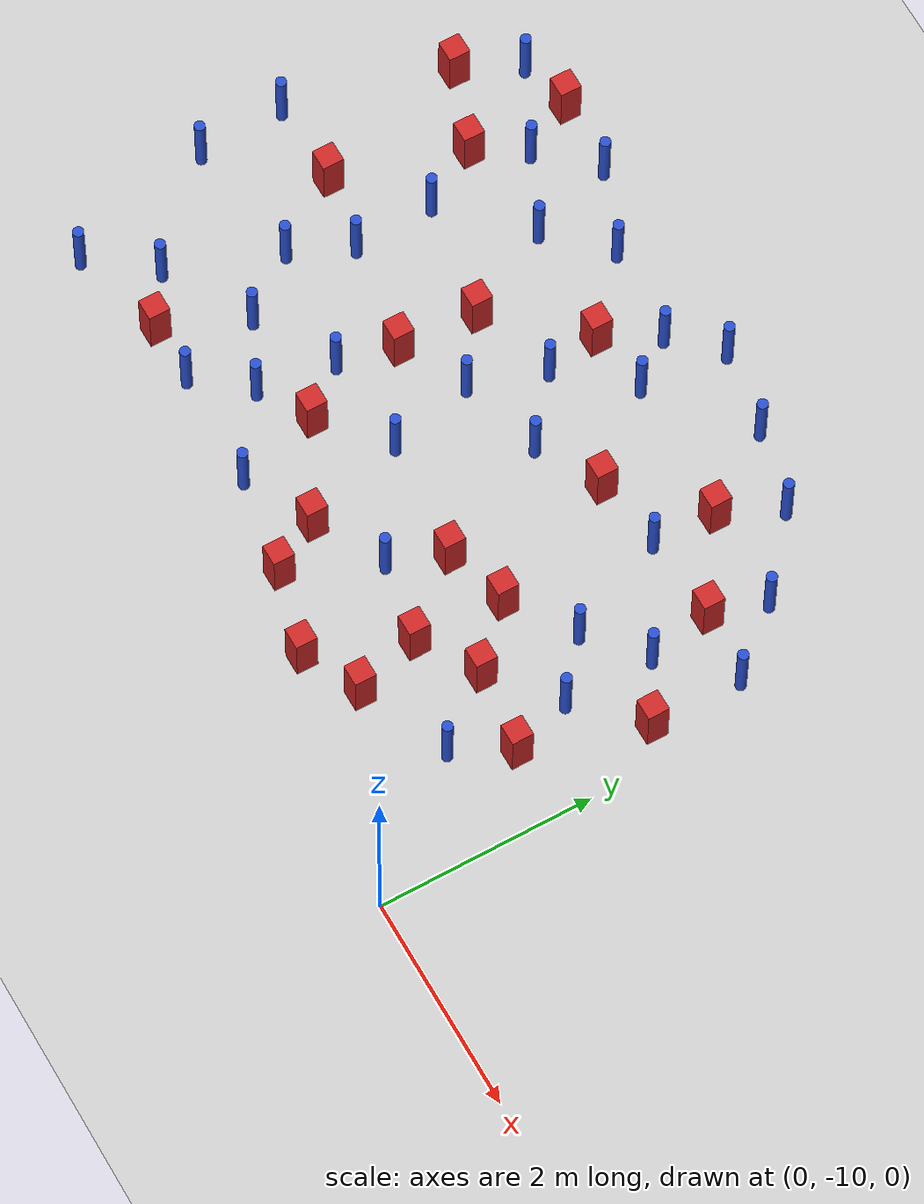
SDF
<sdf version="1.6">
 <world name="default">
  <model name="ground_plane">
   <static>1</static>
   <link name="link">
    <collision name="collision">
     <geometry><plane><normal>0 0 1</normal><size>100 100</size></plane></geometry>
     <surface><friction><ode><mu>100</mu><mu2>50</mu2></ode></friction></surface>
    </collision>
    <visual name="visual">
     <cast_shadows>0</cast_shadows>
     <geometry><plane><normal>0 0 1</normal><size>100 100</size></plane></geometry>
     <material>
      <ambient>1.0 1.0 1.0 1.0</ambient>
      <diffuse>0.8 0.8 0.8 1.0</diffuse>
      <specular>0.01 0.01 0.01 1.000000</specular>
     </material>
    </visual>
   </link>
  </model>
  <model name="pole_obstacle0">
   <static>true</static>
   <pose>-5.52898609765 -5.44128097975 2.88873142074e-08 -9.90536690842e-09 4.60219948965e-07 -1.20965994976e-07</pose>
   <link name="link">
    <pose>0 0 0.3 0 -0 0</pose>
    <inertial>
     <mass>1</mass>
     <inertia><ixx>0.145833</ixx><ixy>0</ixy><ixz>0</ixz><iyy>0.145833</iyy><iyz>0</iyz><izz>0.125</izz></inertia>
    </inertial>
    <collision name="collision">
     <geometry><cylinder><radius>0.05</radius><length>.6</length></cylinder></geometry>
    </collision>
    <visual name="visual">
     <geometry><cylinder><radius>0.05</radius><length>.6</length></cylinder></geometry>
     <material>
      <script><name>Gazebo/Blue</name><uri>file://media/materials/scripts/gazebo.material</uri></script>
     </material>
    </visual>
   </link>
  </model>
  <model name="pole_obstacle4">
   <static>true</static>
   <pose>-5.45148548055 -7.20574879343 2.88873142074e-08 -9.90536690842e-09 4.60219948965e-07 -1.20965994976e-07</pose>
   <link name="link">
    <pose>0 0 0.3 0 -0 0</pose>
    <inertial>
     <mass>1</mass>
     <inertia><ixx>0.145833</ixx><ixy>0</ixy><ixz>0</ixz><iyy>0.145833</iyy><iyz>0</iyz><izz>0.125</izz></inertia>
    </inertial>
    <collision name="collision">
     <geometry><cylinder><radius>0.05</radius><length>.6</length></cylinder></geometry>
    </collision>
    <visual name="visual">
     <geometry><cylinder><radius>0.05</radius><length>.6</length></cylinder></geometry>
     <material>
      <script><name>Gazebo/Blue</name><uri>file://media/materials/scripts/gazebo.material</uri></script>
     </material>
    </visual>
   </link>
  </model>
  <model name="pole_obstacle5">
   <static>true</static>
   <pose>-3.96869382587 -9.11810775149 2.88873142074e-08 -9.90536690427e-09 4.60219948975e-07 -1.2096599497e-07</pose>
   <link name="link">
    <pose>0 0 0.3 0 -0 0</pose>
    <inertial>
     <mass>1</mass>
     <inertia><ixx>0.145833</ixx><ixy>0</ixy><ixz>0</ixz><iyy>0.145833</iyy><iyz>0</iyz><izz>0.125</izz></inertia>
    </inertial>
    <collision name="collision">
     <geometry><cylinder><radius>0.05</radius><length>.6</length></cylinder></geometry>
    </collision>
    <visual name="visual">
     <geometry><cylinder><radius>0.05</radius><length>.6</length></cylinder></geometry>
     <material>
      <script><name>Gazebo/Blue</name><uri>file://media/materials/scripts/gazebo.material</uri></script>
     </material>
    </visual>
   </link>
  </model>
  <model name="pole_obstacle6">
   <static>true</static>
   <pose>-6.06268718287 -8.77293479968 2.88873142074e-08 -9.9053668967e-09 4.60219948993e-07 -1.20965994957e-07</pose>
   <link name="link">
    <pose>0 0 0.3 0 -0 0</pose>
    <inertial>
     <mass>1</mass>
     <inertia><ixx>0.145833</ixx><ixy>0</ixy><ixz>0</ixz><iyy>0.145833</iyy><iyz>0</iyz><izz>0.125</izz></inertia>
    </inertial>
    <collision name="collision">
     <geometry><cylinder><radius>0.05</radius><length>.6</length></cylinder></geometry>
    </collision>
    <visual name="visual">
     <geometry><cylinder><radius>0.05</radius><length>.6</length></cylinder></geometry>
     <material>
      <script><name>Gazebo/Blue</name><uri>file://media/materials/scripts/gazebo.material</uri></script>
     </material>
    </visual>
   </link>
  </model>
  <model name="pole_obstacle7">
   <static>true</static>
   <pose>-0.292384732256 -6.39790182835 2.88873142074e-08 -9.90536689618e-09 4.60219948994e-07 -1.20965994956e-07</pose>
   <link name="link">
    <pose>0 0 0.3 0 -0 0</pose>
    <inertial>
     <mass>1</mass>
     <inertia><ixx>0.145833</ixx><ixy>0</ixy><ixz>0</ixz><iyy>0.145833</iyy><iyz>0</iyz><izz>0.125</izz></inertia>
    </inertial>
    <collision name="collision">
     <geometry><cylinder><radius>0.05</radius><length>.6</length></cylinder></geometry>
    </collision>
    <visual name="visual">
     <geometry><cylinder><radius>0.05</radius><length>.6</length></cylinder></geometry>
     <material>
      <script><name>Gazebo/Blue</name><uri>file://media/materials/scripts/gazebo.material</uri></script>
     </material>
    </visual>
   </link>
  </model>
  <model name="square_post_obstacle11">
   <static>true</static>
   <pose>-3.3232403131 -8.80907015829 8.22691968438e-08 7.22125133819e-06 -7.54495500217e-07 2.29674213826e-05</pose>
   <link name="link">
    <pose>0 0 0.25 0 -0 0</pose>
    <inertial>
     <mass>100</mass>
     <inertia>
      <ixx>0.166667</ixx>
      <ixy>0</ixy>
      <ixz>0</ixz>
      <iyy>0.166667</iyy>
      <iyz>0</iyz>
      <izz>0.166667</izz>
     </inertia>
    </inertial>
    <collision name="collision"><geometry><box><size>.2 .2 .5</size></box></geometry></collision>
    <visual name="visual">
     <geometry><box><size>.2 .2 .5</size></box></geometry>
     <material>
      <script><name>Gazebo/Red</name><uri>file://media/materials/scripts/gazebo.material</uri></script>
     </material>
    </visual>
   </link>
  </model>
  <model name="square_post_obstacle16">
   <static>true</static>
   <pose>-2.29271488066 -9.47991698428 8.22691968438e-08 7.22125133819e-06 -7.54495500217e-07 2.29674213826e-05</pose>
   <link name="link">
    <pose>0 0 0.25 0 -0 0</pose>
    <inertial>
     <mass>100</mass>
     <inertia>
      <ixx>0.166667</ixx>
      <ixy>0</ixy>
      <ixz>0</ixz>
      <iyy>0.166667</iyy>
      <iyz>0</iyz>
      <izz>0.166667</izz>
     </inertia>
    </inertial>
    <collision name="collision"><geometry><box><size>.2 .2 .5</size></box></geometry></collision>
    <visual name="visual">
     <geometry><box><size>.2 .2 .5</size></box></geometry>
     <material>
      <script><name>Gazebo/Red</name><uri>file://media/materials/scripts/gazebo.material</uri></script>
     </material>
    </visual>
   </link>
  </model>
  <model name="pole_obstacle9">
   <static>true</static>
   <pose>-5.272801551 -8.31432086041 2.88873142074e-08 -9.9053668967e-09 4.60219948993e-07 -1.20965994957e-07</pose>
   <link name="link">
    <pose>0 0 0.3 0 -0 0</pose>
    <inertial>
     <mass>1</mass>
     <inertia><ixx>0.145833</ixx><ixy>0</ixy><ixz>0</ixz><iyy>0.145833</iyy><iyz>0</iyz><izz>0.125</izz></inertia>
    </inertial>
    <collision name="collision">
     <geometry><cylinder><radius>0.05</radius><length>.6</length></cylinder></geometry>
    </collision>
    <visual name="visual">
     <geometry><cylinder><radius>0.05</radius><length>.6</length></cylinder></geometry>
     <material>
      <script><name>Gazebo/Blue</name><uri>file://media/materials/scripts/gazebo.material</uri></script>
     </material>
    </visual>
   </link>
  </model>
  <model name="square_post_obstacle18">
   <static>true</static>
   <pose>-0.949726159683 -6.34032384962 8.22691968438e-08 7.22125133819e-06 -7.54495500217e-07 2.29674213826e-05</pose>
   <link name="link">
    <pose>0 0 0.25 0 -0 0</pose>
    <inertial>
     <mass>100</mass>
     <inertia>
      <ixx>0.166667</ixx>
      <ixy>0</ixy>
      <ixz>0</ixz>
      <iyy>0.166667</iyy>
      <iyz>0</iyz>
      <izz>0.166667</izz>
     </inertia>
    </inertial>
    <collision name="collision"><geometry><box><size>.2 .2 .5</size></box></geometry></collision>
    <visual name="visual">
     <geometry><box><size>.2 .2 .5</size></box></geometry>
     <material>
      <script><name>Gazebo/Red</name><uri>file://media/materials/scripts/gazebo.material</uri></script>
     </material>
    </visual>
   </link>
  </model>
  <model name="pole_obstacle21">
   <static>true</static>
   <pose>-4.54711957399 -7.90253743116 2.88873142074e-08 -9.90536690842e-09 4.60219948965e-07 -1.20965994976e-07</pose>
   <link name="link">
    <pose>0 0 0.3 0 -0 0</pose>
    <inertial>
     <mass>1</mass>
     <inertia><ixx>0.145833</ixx><ixy>0</ixy><ixz>0</ixz><iyy>0.145833</iyy><iyz>0</iyz><izz>0.125</izz></inertia>
    </inertial>
    <collision name="collision">
     <geometry><cylinder><radius>0.05</radius><length>.6</length></cylinder></geometry>
    </collision>
    <visual name="visual">
     <geometry><cylinder><radius>0.05</radius><length>.6</length></cylinder></geometry>
     <material>
      <script><name>Gazebo/Blue</name><uri>file://media/materials/scripts/gazebo.material</uri></script>
     </material>
    </visual>
   </link>
  </model>
  <model name="pole_obstacle25">
   <static>true</static>
   <pose>-3.62066253817 -7.84233535312 2.88873142074e-08 -9.90536692062e-09 4.60219948937e-07 -1.20965994985e-07</pose>
   <link name="link">
    <pose>0 0 0.3 0 -0 0</pose>
    <inertial>
     <mass>1</mass>
     <inertia><ixx>0.145833</ixx><ixy>0</ixy><ixz>0</ixz><iyy>0.145833</iyy><iyz>0</iyz><izz>0.125</izz></inertia>
    </inertial>
    <collision name="collision">
     <geometry><cylinder><radius>0.05</radius><length>.6</length></cylinder></geometry>
    </collision>
    <visual name="visual">
     <geometry><cylinder><radius>0.05</radius><length>.6</length></cylinder></geometry>
     <material>
      <script><name>Gazebo/Blue</name><uri>file://media/materials/scripts/gazebo.material</uri></script>
     </material>
    </visual>
   </link>
  </model>
  <model name="pole_obstacle26">
   <static>true</static>
   <pose>-3.08424011812 -5.7530450633 2.88873142074e-08 -9.90536692062e-09 4.60219948937e-07 -1.20965994985e-07</pose>
   <link name="link">
    <pose>0 0 0.3 0 -0 0</pose>
    <inertial>
     <mass>1</mass>
     <inertia><ixx>0.145833</ixx><ixy>0</ixy><ixz>0</ixz><iyy>0.145833</iyy><iyz>0</iyz><izz>0.125</izz></inertia>
    </inertial>
    <collision name="collision">
     <geometry><cylinder><radius>0.05</radius><length>.6</length></cylinder></geometry>
    </collision>
    <visual name="visual">
     <geometry><cylinder><radius>0.05</radius><length>.6</length></cylinder></geometry>
     <material>
      <script><name>Gazebo/Blue</name><uri>file://media/materials/scripts/gazebo.material</uri></script>
     </material>
    </visual>
   </link>
  </model>
  <model name="pole_obstacle42">
   <static>true</static>
   <pose>-5.49207918382 -6.44297155316 2.88873142074e-08 -9.90536690842e-09 4.60219948965e-07 -1.20965994976e-07</pose>
   <link name="link">
    <pose>0 0 0.3 0 -0 0</pose>
    <inertial>
     <mass>1</mass>
     <inertia><ixx>0.145833</ixx><ixy>0</ixy><ixz>0</ixz><iyy>0.145833</iyy><iyz>0</iyz><izz>0.125</izz></inertia>
    </inertial>
    <collision name="collision">
     <geometry><cylinder><radius>0.05</radius><length>.6</length></cylinder></geometry>
    </collision>
    <visual name="visual">
     <geometry><cylinder><radius>0.05</radius><length>.6</length></cylinder></geometry>
     <material>
      <script><name>Gazebo/Blue</name><uri>file://media/materials/scripts/gazebo.material</uri></script>
     </material>
    </visual>
   </link>
  </model>
  <model name="pole_obstacle43">
   <static>true</static>
   <pose>-3.81536613706 -7.04131229586 2.88873142074e-08 -9.90536692062e-09 4.60219948937e-07 -1.20965994985e-07</pose>
   <link name="link">
    <pose>0 0 0.3 0 -0 0</pose>
    <inertial>
     <mass>1</mass>
     <inertia><ixx>0.145833</ixx><ixy>0</ixy><ixz>0</ixz><iyy>0.145833</iyy><iyz>0</iyz><izz>0.125</izz></inertia>
    </inertial>
    <collision name="collision">
     <geometry><cylinder><radius>0.05</radius><length>.6</length></cylinder></geometry>
    </collision>
    <visual name="visual">
     <geometry><cylinder><radius>0.05</radius><length>.6</length></cylinder></geometry>
     <material>
      <script><name>Gazebo/Blue</name><uri>file://media/materials/scripts/gazebo.material</uri></script>
     </material>
    </visual>
   </link>
  </model>
  <model name="pole_obstacle47">
   <static>true</static>
   <pose>-4.31779663233 -5.27472727393 2.88873142074e-08 -9.90536690842e-09 4.60219948965e-07 -1.20965994976e-07</pose>
   <link name="link">
    <pose>0 0 0.3 0 -0 0</pose>
    <inertial>
     <mass>1</mass>
     <inertia><ixx>0.145833</ixx><ixy>0</ixy><ixz>0</ixz><iyy>0.145833</iyy><iyz>0</iyz><izz>0.125</izz></inertia>
    </inertial>
    <collision name="collision">
     <geometry><cylinder><radius>0.05</radius><length>.6</length></cylinder></geometry>
    </collision>
    <visual name="visual">
     <geometry><cylinder><radius>0.05</radius><length>.6</length></cylinder></geometry>
     <material>
      <script><name>Gazebo/Blue</name><uri>file://media/materials/scripts/gazebo.material</uri></script>
     </material>
    </visual>
   </link>
  </model>
  <model name="pole_obstacle48">
   <static>true</static>
   <pose>-3.00749910814 -4.94508477659 2.88873142074e-08 -9.90536692062e-09 4.60219948937e-07 -1.20965994985e-07</pose>
   <link name="link">
    <pose>0 0 0.3 0 -0 0</pose>
    <inertial>
     <mass>1</mass>
     <inertia><ixx>0.145833</ixx><ixy>0</ixy><ixz>0</ixz><iyy>0.145833</iyy><iyz>0</iyz><izz>0.125</izz></inertia>
    </inertial>
    <collision name="collision">
     <geometry><cylinder><radius>0.05</radius><length>.6</length></cylinder></geometry>
    </collision>
    <visual name="visual">
     <geometry><cylinder><radius>0.05</radius><length>.6</length></cylinder></geometry>
     <material>
      <script><name>Gazebo/Blue</name><uri>file://media/materials/scripts/gazebo.material</uri></script>
     </material>
    </visual>
   </link>
  </model>
  <model name="square_post_obstacle51">
   <static>true</static>
   <pose>-5.81934569036 -5.89192156216 8.22691968438e-08 7.22125133819e-06 -7.54495500217e-07 2.29674213826e-05</pose>
   <link name="link">
    <pose>0 0 0.25 0 -0 0</pose>
    <inertial>
     <mass>100</mass>
     <inertia>
      <ixx>0.166667</ixx>
      <ixy>0</ixy>
      <ixz>0</ixz>
      <iyy>0.166667</iyy>
      <iyz>0</iyz>
      <izz>0.166667</izz>
     </inertia>
    </inertial>
    <collision name="collision"><geometry><box><size>.2 .2 .5</size></box></geometry></collision>
    <visual name="visual">
     <geometry><box><size>.2 .2 .5</size></box></geometry>
     <material>
      <script><name>Gazebo/Red</name><uri>file://media/materials/scripts/gazebo.material</uri></script>
     </material>
    </visual>
   </link>
  </model>
  <model name="pole_obstacle51">
   <static>true</static>
   <pose>-0.825996034681 -6.94510042273 2.88873142074e-08 -9.90536689661e-09 4.60219948993e-07 -1.20965994957e-07</pose>
   <link name="link">
    <pose>0 0 0.3 0 -0 0</pose>
    <inertial>
     <mass>1</mass>
     <inertia><ixx>0.145833</ixx><ixy>0</ixy><ixz>0</ixz><iyy>0.145833</iyy><iyz>0</iyz><izz>0.125</izz></inertia>
    </inertial>
    <collision name="collision">
     <geometry><cylinder><radius>0.05</radius><length>.6</length></cylinder></geometry>
    </collision>
    <visual name="visual">
     <geometry><cylinder><radius>0.05</radius><length>.6</length></cylinder></geometry>
     <material>
      <script><name>Gazebo/Blue</name><uri>file://media/materials/scripts/gazebo.material</uri></script>
     </material>
    </visual>
   </link>
  </model>
  <model name="square_post_obstacle54">
   <static>true</static>
   <pose>-3.06158101648 -9.27010223203 8.22691968438e-08 7.2212513382e-06 -7.54495500217e-07 2.29674213826e-05</pose>
   <link name="link">
    <pose>0 0 0.25 0 -0 0</pose>
    <inertial>
     <mass>100</mass>
     <inertia>
      <ixx>0.166667</ixx>
      <ixy>0</ixy>
      <ixz>0</ixz>
      <iyy>0.166667</iyy>
      <iyz>0</iyz>
      <izz>0.166667</izz>
     </inertia>
    </inertial>
    <collision name="collision"><geometry><box><size>.2 .2 .5</size></box></geometry></collision>
    <visual name="visual">
     <geometry><box><size>.2 .2 .5</size></box></geometry>
     <material>
      <script><name>Gazebo/Red</name><uri>file://media/materials/scripts/gazebo.material</uri></script>
     </material>
    </visual>
   </link>
  </model>
  <model name="square_post_obstacle66">
   <static>true</static>
   <pose>-0.649172678272 -8.34612581174 8.22691968438e-08 7.22125133819e-06 -7.54495500217e-07 2.29674213826e-05</pose>
   <link name="link">
    <pose>0 0 0.25 0 -0 0</pose>
    <inertial>
     <mass>100</mass>
     <inertia>
      <ixx>0.166667</ixx>
      <ixy>0</ixy>
      <ixz>0</ixz>
      <iyy>0.166667</iyy>
      <iyz>0</iyz>
      <izz>0.166667</izz>
     </inertia>
    </inertial>
    <collision name="collision"><geometry><box><size>.2 .2 .5</size></box></geometry></collision>
    <visual name="visual">
     <geometry><box><size>.2 .2 .5</size></box></geometry>
     <material>
      <script><name>Gazebo/Red</name><uri>file://media/materials/scripts/gazebo.material</uri></script>
     </material>
    </visual>
   </link>
  </model>
  <model name="pole_obstacle71">
   <static>true</static>
   <pose>-0.822241419633 -7.78043467736 2.88873142074e-08 -9.90536689661e-09 4.60219948993e-07 -1.20965994957e-07</pose>
   <link name="link">
    <pose>0 0 0.3 0 -0 0</pose>
    <inertial>
     <mass>1</mass>
     <inertia><ixx>0.145833</ixx><ixy>0</ixy><ixz>0</ixz><iyy>0.145833</iyy><iyz>0</iyz><izz>0.125</izz></inertia>
    </inertial>
    <collision name="collision">
     <geometry><cylinder><radius>0.05</radius><length>.6</length></cylinder></geometry>
    </collision>
    <visual name="visual">
     <geometry><cylinder><radius>0.05</radius><length>.6</length></cylinder></geometry>
     <material>
      <script><name>Gazebo/Blue</name><uri>file://media/materials/scripts/gazebo.material</uri></script>
     </material>
    </visual>
   </link>
  </model>
  <model name="square_post_obstacle81">
   <static>true</static>
   <pose>-2.49349000925 -7.94978055375 8.22691968438e-08 7.2212513382e-06 -7.54495500217e-07 2.29674213826e-05</pose>
   <link name="link">
    <pose>0 0 0.25 0 -0 0</pose>
    <inertial>
     <mass>100</mass>
     <inertia>
      <ixx>0.166667</ixx>
      <ixy>0</ixy>
      <ixz>0</ixz>
      <iyy>0.166667</iyy>
      <iyz>0</iyz>
      <izz>0.166667</izz>
     </inertia>
    </inertial>
    <collision name="collision"><geometry><box><size>.2 .2 .5</size></box></geometry></collision>
    <visual name="visual">
     <geometry><box><size>.2 .2 .5</size></box></geometry>
     <material>
      <script><name>Gazebo/Red</name><uri>file://media/materials/scripts/gazebo.material</uri></script>
     </material>
    </visual>
   </link>
  </model>
  <model name="square_post_obstacle83">
   <static>true</static>
   <pose>-4.38186180097 -6.62471325569 8.22691968438e-08 7.2212513382e-06 -7.54495500217e-07 2.29674213826e-05</pose>
   <link name="link">
    <pose>0 0 0.25 0 -0 0</pose>
    <inertial>
     <mass>100</mass>
     <inertia>
      <ixx>0.166667</ixx>
      <ixy>0</ixy>
      <ixz>0</ixz>
      <iyy>0.166667</iyy>
      <iyz>0</iyz>
      <izz>0.166667</izz>
     </inertia>
    </inertial>
    <collision name="collision"><geometry><box><size>.2 .2 .5</size></box></geometry></collision>
    <visual name="visual">
     <geometry><box><size>.2 .2 .5</size></box></geometry>
     <material>
      <script><name>Gazebo/Red</name><uri>file://media/materials/scripts/gazebo.material</uri></script>
     </material>
    </visual>
   </link>
  </model>
  <model name="pole_obstacle95">
   <static>true</static>
   <pose>-6.50789790713 -9.32592591621 2.88873142074e-08 -9.9053668967e-09 4.60219948993e-07 -1.20965994957e-07</pose>
   <link name="link">
    <pose>0 0 0.3 0 -0 0</pose>
    <inertial>
     <mass>1</mass>
     <inertia><ixx>0.145833</ixx><ixy>0</ixy><ixz>0</ixz><iyy>0.145833</iyy><iyz>0</iyz><izz>0.125</izz></inertia>
    </inertial>
    <collision name="collision">
     <geometry><cylinder><radius>0.05</radius><length>.6</length></cylinder></geometry>
    </collision>
    <visual name="visual">
     <geometry><cylinder><radius>0.05</radius><length>.6</length></cylinder></geometry>
     <material>
      <script><name>Gazebo/Blue</name><uri>file://media/materials/scripts/gazebo.material</uri></script>
     </material>
    </visual>
   </link>
  </model>
  <model name="square_post_obstacle86">
   <static>true</static>
   <pose>-2.44282513571 -6.50675520682 8.22691968438e-08 7.22125133819e-06 -7.54495500217e-07 2.29674213826e-05</pose>
   <link name="link">
    <pose>0 0 0.25 0 -0 0</pose>
    <inertial>
     <mass>100</mass>
     <inertia>
      <ixx>0.166667</ixx>
      <ixy>0</ixy>
      <ixz>0</ixz>
      <iyy>0.166667</iyy>
      <iyz>0</iyz>
      <izz>0.166667</izz>
     </inertia>
    </inertial>
    <collision name="collision"><geometry><box><size>.2 .2 .5</size></box></geometry></collision>
    <visual name="visual">
     <geometry><box><size>.2 .2 .5</size></box></geometry>
     <material>
      <script><name>Gazebo/Red</name><uri>file://media/materials/scripts/gazebo.material</uri></script>
     </material>
    </visual>
   </link>
  </model>
  <model name="pole_obstacle102">
   <static>true</static>
   <pose>-4.65675356742 -8.61544617662 2.88873142074e-08 -9.9053668967e-09 4.60219948993e-07 -1.20965994957e-07</pose>
   <link name="link">
    <pose>0 0 0.3 0 -0 0</pose>
    <inertial>
     <mass>1</mass>
     <inertia><ixx>0.145833</ixx><ixy>0</ixy><ixz>0</ixz><iyy>0.145833</iyy><iyz>0</iyz><izz>0.125</izz></inertia>
    </inertial>
    <collision name="collision">
     <geometry><cylinder><radius>0.05</radius><length>.6</length></cylinder></geometry>
    </collision>
    <visual name="visual">
     <geometry><cylinder><radius>0.05</radius><length>.6</length></cylinder></geometry>
     <material>
      <script><name>Gazebo/Blue</name><uri>file://media/materials/scripts/gazebo.material</uri></script>
     </material>
    </visual>
   </link>
  </model>
  <model name="pole_obstacle104">
   <static>true</static>
   <pose>-6.91175291134 -7.9289701645 2.88873142074e-08 -9.90536690842e-09 4.60219948965e-07 -1.20965994976e-07</pose>
   <link name="link">
    <pose>0 0 0.3 0 -0 0</pose>
    <inertial>
     <mass>1</mass>
     <inertia><ixx>0.145833</ixx><ixy>0</ixy><ixz>0</ixz><iyy>0.145833</iyy><iyz>0</iyz><izz>0.125</izz></inertia>
    </inertial>
    <collision name="collision">
     <geometry><cylinder><radius>0.05</radius><length>.6</length></cylinder></geometry>
    </collision>
    <visual name="visual">
     <geometry><cylinder><radius>0.05</radius><length>.6</length></cylinder></geometry>
     <material>
      <script><name>Gazebo/Blue</name><uri>file://media/materials/scripts/gazebo.material</uri></script>
     </material>
    </visual>
   </link>
  </model>
  <model name="pole_obstacle107">
   <static>true</static>
   <pose>-2.23229300059 -5.07492259436 2.88873142074e-08 -9.90536689859e-09 4.60219948989e-07 -1.20965994961e-07</pose>
   <link name="link">
    <pose>0 0 0.3 0 -0 0</pose>
    <inertial>
     <mass>1</mass>
     <inertia><ixx>0.145833</ixx><ixy>0</ixy><ixz>0</ixz><iyy>0.145833</iyy><iyz>0</iyz><izz>0.125</izz></inertia>
    </inertial>
    <collision name="collision">
     <geometry><cylinder><radius>0.05</radius><length>.6</length></cylinder></geometry>
    </collision>
    <visual name="visual">
     <geometry><cylinder><radius>0.05</radius><length>.6</length></cylinder></geometry>
     <material>
      <script><name>Gazebo/Blue</name><uri>file://media/materials/scripts/gazebo.material</uri></script>
     </material>
    </visual>
   </link>
  </model>
  <model name="pole_obstacle109">
   <static>true</static>
   <pose>-6.29648739608 -5.06090718593 2.88873142074e-08 -9.90536690842e-09 4.60219948965e-07 -1.20965994976e-07</pose>
   <link name="link">
    <pose>0 0 0.3 0 -0 0</pose>
    <inertial>
     <mass>1</mass>
     <inertia><ixx>0.145833</ixx><ixy>0</ixy><ixz>0</ixz><iyy>0.145833</iyy><iyz>0</iyz><izz>0.125</izz></inertia>
    </inertial>
    <collision name="collision">
     <geometry><cylinder><radius>0.05</radius><length>.6</length></cylinder></geometry>
    </collision>
    <visual name="visual">
     <geometry><cylinder><radius>0.05</radius><length>.6</length></cylinder></geometry>
     <material>
      <script><name>Gazebo/Blue</name><uri>file://media/materials/scripts/gazebo.material</uri></script>
     </material>
    </visual>
   </link>
  </model>
  <model name="square_post_obstacle97">
   <static>true</static>
   <pose>-6.57668755564 -5.61141084682 8.22691968438e-08 7.2212513382e-06 -7.54495500217e-07 2.29674213826e-05</pose>
   <link name="link">
    <pose>0 0 0.25 0 -0 0</pose>
    <inertial>
     <mass>100</mass>
     <inertia>
      <ixx>0.166667</ixx>
      <ixy>0</ixy>
      <ixz>0</ixz>
      <iyy>0.166667</iyy>
      <iyz>0</iyz>
      <izz>0.166667</izz>
     </inertia>
    </inertial>
    <collision name="collision"><geometry><box><size>.2 .2 .5</size></box></geometry></collision>
    <visual name="visual">
     <geometry><box><size>.2 .2 .5</size></box></geometry>
     <material>
      <script><name>Gazebo/Red</name><uri>file://media/materials/scripts/gazebo.material</uri></script>
     </material>
    </visual>
   </link>
  </model>
  <model name="pole_obstacle110">
   <static>true</static>
   <pose>-3.40343939373 -5.34156332316 2.88873142074e-08 -9.90536689859e-09 4.60219948989e-07 -1.20965994961e-07</pose>
   <link name="link">
    <pose>0 0 0.3 0 -0 0</pose>
    <inertial>
     <mass>1</mass>
     <inertia><ixx>0.145833</ixx><ixy>0</ixy><ixz>0</ixz><iyy>0.145833</iyy><iyz>0</iyz><izz>0.125</izz></inertia>
    </inertial>
    <collision name="collision">
     <geometry><cylinder><radius>0.05</radius><length>.6</length></cylinder></geometry>
    </collision>
    <visual name="visual">
     <geometry><cylinder><radius>0.05</radius><length>.6</length></cylinder></geometry>
     <material>
      <script><name>Gazebo/Blue</name><uri>file://media/materials/scripts/gazebo.material</uri></script>
     </material>
    </visual>
   </link>
  </model>
  <model name="pole_obstacle114">
   <static>true</static>
   <pose>-3.6012609185 -6.35263733372 2.88873142074e-08 -9.90536692062e-09 4.60219948937e-07 -1.20965994985e-07</pose>
   <link name="link">
    <pose>0 0 0.3 0 -0 0</pose>
    <inertial>
     <mass>1</mass>
     <inertia><ixx>0.145833</ixx><ixy>0</ixy><ixz>0</ixz><iyy>0.145833</iyy><iyz>0</iyz><izz>0.125</izz></inertia>
    </inertial>
    <collision name="collision">
     <geometry><cylinder><radius>0.05</radius><length>.6</length></cylinder></geometry>
    </collision>
    <visual name="visual">
     <geometry><cylinder><radius>0.05</radius><length>.6</length></cylinder></geometry>
     <material>
      <script><name>Gazebo/Blue</name><uri>file://media/materials/scripts/gazebo.material</uri></script>
     </material>
    </visual>
   </link>
  </model>
  <model name="pole_obstacle115">
   <static>true</static>
   <pose>-5.05045355897 -9.08025542245 2.88873142074e-08 -9.9053668967e-09 4.60219948993e-07 -1.20965994957e-07</pose>
   <link name="link">
    <pose>0 0 0.3 0 -0 0</pose>
    <inertial>
     <mass>1</mass>
     <inertia><ixx>0.145833</ixx><ixy>0</ixy><ixz>0</ixz><iyy>0.145833</iyy><iyz>0</iyz><izz>0.125</izz></inertia>
    </inertial>
    <collision name="collision">
     <geometry><cylinder><radius>0.05</radius><length>.6</length></cylinder></geometry>
    </collision>
    <visual name="visual">
     <geometry><cylinder><radius>0.05</radius><length>.6</length></cylinder></geometry>
     <material>
      <script><name>Gazebo/Blue</name><uri>file://media/materials/scripts/gazebo.material</uri></script>
     </material>
    </visual>
   </link>
  </model>
  <model name="square_post_obstacle111">
   <static>true</static>
   <pose>-0.300275908055 -7.25243247488 8.22691968438e-08 7.2212513382e-06 -7.54495500217e-07 2.29674213826e-05</pose>
   <link name="link">
    <pose>0 0 0.25 0 -0 0</pose>
    <inertial>
     <mass>100</mass>
     <inertia>
      <ixx>0.166667</ixx>
      <ixy>0</ixy>
      <ixz>0</ixz>
      <iyy>0.166667</iyy>
      <iyz>0</iyz>
      <izz>0.166667</izz>
     </inertia>
    </inertial>
    <collision name="collision"><geometry><box><size>.2 .2 .5</size></box></geometry></collision>
    <visual name="visual">
     <geometry><box><size>.2 .2 .5</size></box></geometry>
     <material>
      <script><name>Gazebo/Red</name><uri>file://media/materials/scripts/gazebo.material</uri></script>
     </material>
    </visual>
   </link>
  </model>
  <model name="pole_obstacle120">
   <static>true</static>
   <pose>-2.68602402399 -8.45958874129 2.88873142074e-08 -9.90536692318e-09 4.6021994893e-07 -1.20965994988e-07</pose>
   <link name="link">
    <pose>0 0 0.3 0 -0 0</pose>
    <inertial>
     <mass>1</mass>
     <inertia><ixx>0.145833</ixx><ixy>0</ixy><ixz>0</ixz><iyy>0.145833</iyy><iyz>0</iyz><izz>0.125</izz></inertia>
    </inertial>
    <collision name="collision">
     <geometry><cylinder><radius>0.05</radius><length>.6</length></cylinder></geometry>
    </collision>
    <visual name="visual">
     <geometry><cylinder><radius>0.05</radius><length>.6</length></cylinder></geometry>
     <material>
      <script><name>Gazebo/Blue</name><uri>file://media/materials/scripts/gazebo.material</uri></script>
     </material>
    </visual>
   </link>
  </model>
  <model name="pole_obstacle122">
   <static>true</static>
   <pose>-1.7525219149 -6.40035128384 2.88873142074e-08 -9.90536689852e-09 4.60219948989e-07 -1.2096599496e-07</pose>
   <link name="link">
    <pose>0 0 0.3 0 -0 0</pose>
    <inertial>
     <mass>1</mass>
     <inertia><ixx>0.145833</ixx><ixy>0</ixy><ixz>0</ixz><iyy>0.145833</iyy><iyz>0</iyz><izz>0.125</izz></inertia>
    </inertial>
    <collision name="collision">
     <geometry><cylinder><radius>0.05</radius><length>.6</length></cylinder></geometry>
    </collision>
    <visual name="visual">
     <geometry><cylinder><radius>0.05</radius><length>.6</length></cylinder></geometry>
     <material>
      <script><name>Gazebo/Blue</name><uri>file://media/materials/scripts/gazebo.material</uri></script>
     </material>
    </visual>
   </link>
  </model>
  <model name="pole_obstacle124">
   <static>true</static>
   <pose>-6.95500783097 -7.11048048679 2.88873142074e-08 -9.90536690842e-09 4.60219948965e-07 -1.20965994976e-07</pose>
   <link name="link">
    <pose>0 0 0.3 0 -0 0</pose>
    <inertial>
     <mass>1</mass>
     <inertia><ixx>0.145833</ixx><ixy>0</ixy><ixz>0</ixz><iyy>0.145833</iyy><iyz>0</iyz><izz>0.125</izz></inertia>
    </inertial>
    <collision name="collision">
     <geometry><cylinder><radius>0.05</radius><length>.6</length></cylinder></geometry>
    </collision>
    <visual name="visual">
     <geometry><cylinder><radius>0.05</radius><length>.6</length></cylinder></geometry>
     <material>
      <script><name>Gazebo/Blue</name><uri>file://media/materials/scripts/gazebo.material</uri></script>
     </material>
    </visual>
   </link>
  </model>
  <model name="square_post_obstacle120">
   <static>true</static>
   <pose>-1.90079779827 -7.77349136369 8.22691968438e-08 7.22125133819e-06 -7.54495500217e-07 2.29674213826e-05</pose>
   <link name="link">
    <pose>0 0 0.25 0 -0 0</pose>
    <inertial>
     <mass>100</mass>
     <inertia>
      <ixx>0.166667</ixx>
      <ixy>0</ixy>
      <ixz>0</ixz>
      <iyy>0.166667</iyy>
      <iyz>0</iyz>
      <izz>0.166667</izz>
     </inertia>
    </inertial>
    <collision name="collision"><geometry><box><size>.2 .2 .5</size></box></geometry></collision>
    <visual name="visual">
     <geometry><box><size>.2 .2 .5</size></box></geometry>
     <material>
      <script><name>Gazebo/Red</name><uri>file://media/materials/scripts/gazebo.material</uri></script>
     </material>
    </visual>
   </link>
  </model>
  <model name="square_post_obstacle124">
   <static>true</static>
   <pose>-1.93976794556 -8.59821327815 8.22691968438e-08 7.22125133819e-06 -7.54495500217e-07 2.29674213826e-05</pose>
   <link name="link">
    <pose>0 0 0.25 0 -0 0</pose>
    <inertial>
     <mass>100</mass>
     <inertia>
      <ixx>0.166667</ixx>
      <ixy>0</ixy>
      <ixz>0</ixz>
      <iyy>0.166667</iyy>
      <iyz>0</iyz>
      <izz>0.166667</izz>
     </inertia>
    </inertial>
    <collision name="collision"><geometry><box><size>.2 .2 .5</size></box></geometry></collision>
    <visual name="visual">
     <geometry><box><size>.2 .2 .5</size></box></geometry>
     <material>
      <script><name>Gazebo/Red</name><uri>file://media/materials/scripts/gazebo.material</uri></script>
     </material>
    </visual>
   </link>
  </model>
  <model name="pole_obstacle143">
   <static>true</static>
   <pose>-1.47748327244 -5.26162968025 2.88873142074e-08 -9.90536689852e-09 4.60219948989e-07 -1.2096599496e-07</pose>
   <link name="link">
    <pose>0 0 0.3 0 -0 0</pose>
    <inertial>
     <mass>1</mass>
     <inertia><ixx>0.145833</ixx><ixy>0</ixy><ixz>0</ixz><iyy>0.145833</iyy><iyz>0</iyz><izz>0.125</izz></inertia>
    </inertial>
    <collision name="collision">
     <geometry><cylinder><radius>0.05</radius><length>.6</length></cylinder></geometry>
    </collision>
    <visual name="visual">
     <geometry><cylinder><radius>0.05</radius><length>.6</length></cylinder></geometry>
     <material>
      <script><name>Gazebo/Blue</name><uri>file://media/materials/scripts/gazebo.material</uri></script>
     </material>
    </visual>
   </link>
  </model>
  <model name="pole_obstacle146">
   <static>true</static>
   <pose>-1.31785001743 -7.36640840176 2.88873142074e-08 -9.90536689852e-09 4.60219948989e-07 -1.2096599496e-07</pose>
   <link name="link">
    <pose>0 0 0.3 0 -0 0</pose>
    <inertial>
     <mass>1</mass>
     <inertia><ixx>0.145833</ixx><ixy>0</ixy><ixz>0</ixz><iyy>0.145833</iyy><iyz>0</iyz><izz>0.125</izz></inertia>
    </inertial>
    <collision name="collision">
     <geometry><cylinder><radius>0.05</radius><length>.6</length></cylinder></geometry>
    </collision>
    <visual name="visual">
     <geometry><cylinder><radius>0.05</radius><length>.6</length></cylinder></geometry>
     <material>
      <script><name>Gazebo/Blue</name><uri>file://media/materials/scripts/gazebo.material</uri></script>
     </material>
    </visual>
   </link>
  </model>
  <model name="square_post_obstacle141">
   <static>true</static>
   <pose>-4.43012122685 -7.36074882841 8.22691968438e-08 7.2212513382e-06 -7.54495500217e-07 2.29674213826e-05</pose>
   <link name="link">
    <pose>0 0 0.25 0 -0 0</pose>
    <inertial>
     <mass>100</mass>
     <inertia>
      <ixx>0.166667</ixx>
      <ixy>0</ixy>
      <ixz>0</ixz>
      <iyy>0.166667</iyy>
      <iyz>0</iyz>
      <izz>0.166667</izz>
     </inertia>
    </inertial>
    <collision name="collision"><geometry><box><size>.2 .2 .5</size></box></geometry></collision>
    <visual name="visual">
     <geometry><box><size>.2 .2 .5</size></box></geometry>
     <material>
      <script><name>Gazebo/Red</name><uri>file://media/materials/scripts/gazebo.material</uri></script>
     </material>
    </visual>
   </link>
  </model>
  <model name="pole_obstacle156">
   <static>true</static>
   <pose>-5.07750772681 -4.96977922998 2.88873142074e-08 -9.90536690842e-09 4.60219948965e-07 -1.20965994976e-07</pose>
   <link name="link">
    <pose>0 0 0.3 0 -0 0</pose>
    <inertial>
     <mass>1</mass>
     <inertia><ixx>0.145833</ixx><ixy>0</ixy><ixz>0</ixz><iyy>0.145833</iyy><iyz>0</iyz><izz>0.125</izz></inertia>
    </inertial>
    <collision name="collision">
     <geometry><cylinder><radius>0.05</radius><length>.6</length></cylinder></geometry>
    </collision>
    <visual name="visual">
     <geometry><cylinder><radius>0.05</radius><length>.6</length></cylinder></geometry>
     <material>
      <script><name>Gazebo/Blue</name><uri>file://media/materials/scripts/gazebo.material</uri></script>
     </material>
    </visual>
   </link>
  </model>
  <model name="pole_obstacle172">
   <static>true</static>
   <pose>-5.70127937868 -7.75810545423 2.88873142074e-08 -9.90536690842e-09 4.60219948965e-07 -1.20965994976e-07</pose>
   <link name="link">
    <pose>0 0 0.3 0 -0 0</pose>
    <inertial>
     <mass>1</mass>
     <inertia><ixx>0.145833</ixx><ixy>0</ixy><ixz>0</ixz><iyy>0.145833</iyy><iyz>0</iyz><izz>0.125</izz></inertia>
    </inertial>
    <collision name="collision">
     <geometry><cylinder><radius>0.05</radius><length>.6</length></cylinder></geometry>
    </collision>
    <visual name="visual">
     <geometry><cylinder><radius>0.05</radius><length>.6</length></cylinder></geometry>
     <material>
      <script><name>Gazebo/Blue</name><uri>file://media/materials/scripts/gazebo.material</uri></script>
     </material>
    </visual>
   </link>
  </model>
  <model name="square_post_obstacle164">
   <static>true</static>
   <pose>-1.40752796777 -8.25895148358 8.22691968438e-08 7.22125133819e-06 -7.54495500217e-07 2.29674213826e-05</pose>
   <link name="link">
    <pose>0 0 0.25 0 -0 0</pose>
    <inertial>
     <mass>100</mass>
     <inertia>
      <ixx>0.166667</ixx>
      <ixy>0</ixy>
      <ixz>0</ixz>
      <iyy>0.166667</iyy>
      <iyz>0</iyz>
      <izz>0.166667</izz>
     </inertia>
    </inertial>
    <collision name="collision"><geometry><box><size>.2 .2 .5</size></box></geometry></collision>
    <visual name="visual">
     <geometry><box><size>.2 .2 .5</size></box></geometry>
     <material>
      <script><name>Gazebo/Red</name><uri>file://media/materials/scripts/gazebo.material</uri></script>
     </material>
    </visual>
   </link>
  </model>
  <model name="pole_obstacle180">
   <static>true</static>
   <pose>-3.02920324838 -6.81968017315 2.88873142074e-08 -9.90536692062e-09 4.60219948937e-07 -1.20965994985e-07</pose>
   <link name="link">
    <pose>0 0 0.3 0 -0 0</pose>
    <inertial>
     <mass>1</mass>
     <inertia><ixx>0.145833</ixx><ixy>0</ixy><ixz>0</ixz><iyy>0.145833</iyy><iyz>0</iyz><izz>0.125</izz></inertia>
    </inertial>
    <collision name="collision">
     <geometry><cylinder><radius>0.05</radius><length>.6</length></cylinder></geometry>
    </collision>
    <visual name="visual">
     <geometry><cylinder><radius>0.05</radius><length>.6</length></cylinder></geometry>
     <material>
      <script><name>Gazebo/Blue</name><uri>file://media/materials/scripts/gazebo.material</uri></script>
     </material>
    </visual>
   </link>
  </model>
  <model name="square_post_obstacle174">
   <static>true</static>
   <pose>-6.16880774922 -7.08423673815 8.22691968438e-08 7.2212513382e-06 -7.54495500217e-07 2.29674213826e-05</pose>
   <link name="link">
    <pose>0 0 0.25 0 -0 0</pose>
    <inertial>
     <mass>100</mass>
     <inertia>
      <ixx>0.166667</ixx>
      <ixy>0</ixy>
      <ixz>0</ixz>
      <iyy>0.166667</iyy>
      <iyz>0</iyz>
      <izz>0.166667</izz>
     </inertia>
    </inertial>
    <collision name="collision"><geometry><box><size>.2 .2 .5</size></box></geometry></collision>
    <visual name="visual">
     <geometry><box><size>.2 .2 .5</size></box></geometry>
     <material>
      <script><name>Gazebo/Red</name><uri>file://media/materials/scripts/gazebo.material</uri></script>
     </material>
    </visual>
   </link>
  </model>
  <model name="square_post_obstacle178">
   <static>true</static>
   <pose>-1.7568851019 -9.21659481997 8.22691968438e-08 7.22125133819e-06 -7.54495500217e-07 2.29674213826e-05</pose>
   <link name="link">
    <pose>0 0 0.25 0 -0 0</pose>
    <inertial>
     <mass>100</mass>
     <inertia>
      <ixx>0.166667</ixx>
      <ixy>0</ixy>
      <ixz>0</ixz>
      <iyy>0.166667</iyy>
      <iyz>0</iyz>
      <izz>0.166667</izz>
     </inertia>
    </inertial>
    <collision name="collision"><geometry><box><size>.2 .2 .5</size></box></geometry></collision>
    <visual name="visual">
     <geometry><box><size>.2 .2 .5</size></box></geometry>
     <material>
      <script><name>Gazebo/Red</name><uri>file://media/materials/scripts/gazebo.material</uri></script>
     </material>
    </visual>
   </link>
  </model>
  <model name="square_post_obstacle184">
   <static>true</static>
   <pose>-5.79920819894 -4.9462251564 8.22691968438e-08 7.22125133819e-06 -7.54495500217e-07 2.29674213826e-05</pose>
   <link name="link">
    <pose>0 0 0.25 0 -0 0</pose>
    <inertial>
     <mass>100</mass>
     <inertia>
      <ixx>0.166667</ixx>
      <ixy>0</ixy>
      <ixz>0</ixz>
      <iyy>0.166667</iyy>
      <iyz>0</iyz>
      <izz>0.166667</izz>
     </inertia>
    </inertial>
    <collision name="collision"><geometry><box><size>.2 .2 .5</size></box></geometry></collision>
    <visual name="visual">
     <geometry><box><size>.2 .2 .5</size></box></geometry>
     <material>
      <script><name>Gazebo/Red</name><uri>file://media/materials/scripts/gazebo.material</uri></script>
     </material>
    </visual>
   </link>
  </model>
  <model name="square_post_obstacle193">
   <static>true</static>
   <pose>-4.19084298483 -8.33528155091 8.22691968438e-08 7.22125133819e-06 -7.54495500217e-07 2.29674213826e-05</pose>
   <link name="link">
    <pose>0 0 0.25 0 -0 0</pose>
    <inertial>
     <mass>100</mass>
     <inertia>
      <ixx>0.166667</ixx>
      <ixy>0</ixy>
      <ixz>0</ixz>
      <iyy>0.166667</iyy>
      <iyz>0</iyz>
      <izz>0.166667</izz>
     </inertia>
    </inertial>
    <collision name="collision"><geometry><box><size>.2 .2 .5</size></box></geometry></collision>
    <visual name="visual">
     <geometry><box><size>.2 .2 .5</size></box></geometry>
     <material>
      <script><name>Gazebo/Red</name><uri>file://media/materials/scripts/gazebo.material</uri></script>
     </material>
    </visual>
   </link>
  </model>
  <model name="pole_obstacle192">
   <static>true</static>
   <pose>-4.81060575571 -5.7716197435 2.88873142074e-08 -9.90536690842e-09 4.60219948965e-07 -1.20965994976e-07</pose>
   <link name="link">
    <pose>0 0 0.3 0 -0 0</pose>
    <inertial>
     <mass>1</mass>
     <inertia><ixx>0.145833</ixx><ixy>0</ixy><ixz>0</ixz><iyy>0.145833</iyy><iyz>0</iyz><izz>0.125</izz></inertia>
    </inertial>
    <collision name="collision">
     <geometry><cylinder><radius>0.05</radius><length>.6</length></cylinder></geometry>
    </collision>
    <visual name="visual">
     <geometry><cylinder><radius>0.05</radius><length>.6</length></cylinder></geometry>
     <material>
      <script><name>Gazebo/Blue</name><uri>file://media/materials/scripts/gazebo.material</uri></script>
     </material>
    </visual>
   </link>
  </model>
  <model name="square_post_obstacle206">
   <static>true</static>
   <pose>-5.61582431552 -9.07498954103 8.22691968438e-08 7.22125133819e-06 -7.54495500217e-07 2.29674213826e-05</pose>
   <link name="link">
    <pose>0 0 0.25 0 -0 0</pose>
    <inertial>
     <mass>100</mass>
     <inertia>
      <ixx>0.166667</ixx>
      <ixy>0</ixy>
      <ixz>0</ixz>
      <iyy>0.166667</iyy>
      <iyz>0</iyz>
      <izz>0.166667</izz>
     </inertia>
    </inertial>
    <collision name="collision"><geometry><box><size>.2 .2 .5</size></box></geometry></collision>
    <visual name="visual">
     <geometry><box><size>.2 .2 .5</size></box></geometry>
     <material>
      <script><name>Gazebo/Red</name><uri>file://media/materials/scripts/gazebo.material</uri></script>
     </material>
    </visual>
   </link>
  </model>
  <model name="square_post_obstacle210">
   <static>true</static>
   <pose>-3.69117012054 -5.84472618411 8.22691968438e-08 7.2212513382e-06 -7.54495500217e-07 2.29674213826e-05</pose>
   <link name="link">
    <pose>0 0 0.25 0 -0 0</pose>
    <inertial>
     <mass>100</mass>
     <inertia>
      <ixx>0.166667</ixx>
      <ixy>0</ixy>
      <ixz>0</ixz>
      <iyy>0.166667</iyy>
      <iyz>0</iyz>
      <izz>0.166667</izz>
     </inertia>
    </inertial>
    <collision name="collision"><geometry><box><size>.2 .2 .5</size></box></geometry></collision>
    <visual name="visual">
     <geometry><box><size>.2 .2 .5</size></box></geometry>
     <material>
      <script><name>Gazebo/Red</name><uri>file://media/materials/scripts/gazebo.material</uri></script>
     </material>
    </visual>
   </link>
  </model>
  <model name="pole_obstacle208">
   <static>true</static>
   <pose>-0.918644080201 -8.85588254348 2.88873142074e-08 -9.90536690779e-09 4.60219948967e-07 -1.20965994975e-07</pose>
   <link name="link">
    <pose>0 0 0.3 0 -0 0</pose>
    <inertial>
     <mass>1</mass>
     <inertia><ixx>0.145833</ixx><ixy>0</ixy><ixz>0</ixz><iyy>0.145833</iyy><iyz>0</iyz><izz>0.125</izz></inertia>
    </inertial>
    <collision name="collision">
     <geometry><cylinder><radius>0.05</radius><length>.6</length></cylinder></geometry>
    </collision>
    <visual name="visual">
     <geometry><cylinder><radius>0.05</radius><length>.6</length></cylinder></geometry>
     <material>
      <script><name>Gazebo/Blue</name><uri>file://media/materials/scripts/gazebo.material</uri></script>
     </material>
    </visual>
   </link>
  </model>
  <model name="pole_obstacle215">
   <static>true</static>
   <pose>-0.796985424884 -5.82609477919 2.88873142074e-08 -9.90536689661e-09 4.60219948993e-07 -1.20965994957e-07</pose>
   <link name="link">
    <pose>0 0 0.3 0 -0 0</pose>
    <inertial>
     <mass>1</mass>
     <inertia><ixx>0.145833</ixx><ixy>0</ixy><ixz>0</ixz><iyy>0.145833</iyy><iyz>0</iyz><izz>0.125</izz></inertia>
    </inertial>
    <collision name="collision">
     <geometry><cylinder><radius>0.05</radius><length>.6</length></cylinder></geometry>
    </collision>
    <visual name="visual">
     <geometry><cylinder><radius>0.05</radius><length>.6</length></cylinder></geometry>
     <material>
      <script><name>Gazebo/Blue</name><uri>file://media/materials/scripts/gazebo.material</uri></script>
     </material>
    </visual>
   </link>
  </model>
  <model name="square_post_obstacle218">
   <static>true</static>
   <pose>-1.73603996738 -5.81403003534 8.22691968438e-08 7.2212513382e-06 -7.54495500217e-07 2.29674213826e-05</pose>
   <link name="link">
    <pose>0 0 0.25 0 -0 0</pose>
    <inertial>
     <mass>100</mass>
     <inertia>
      <ixx>0.166667</ixx>
      <ixy>0</ixy>
      <ixz>0</ixz>
      <iyy>0.166667</iyy>
      <iyz>0</iyz>
      <izz>0.166667</izz>
     </inertia>
    </inertial>
    <collision name="collision"><geometry><box><size>.2 .2 .5</size></box></geometry></collision>
    <visual name="visual">
     <geometry><box><size>.2 .2 .5</size></box></geometry>
     <material>
      <script><name>Gazebo/Red</name><uri>file://media/materials/scripts/gazebo.material</uri></script>
     </material>
    </visual>
   </link>
  </model>
 </world>
</sdf>
